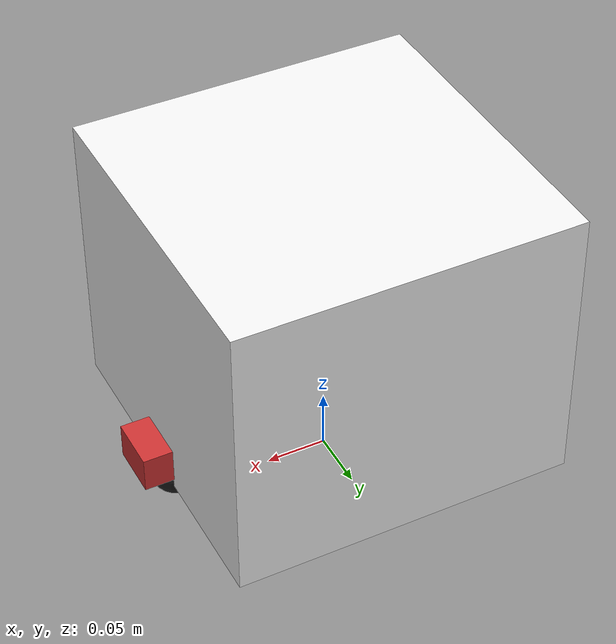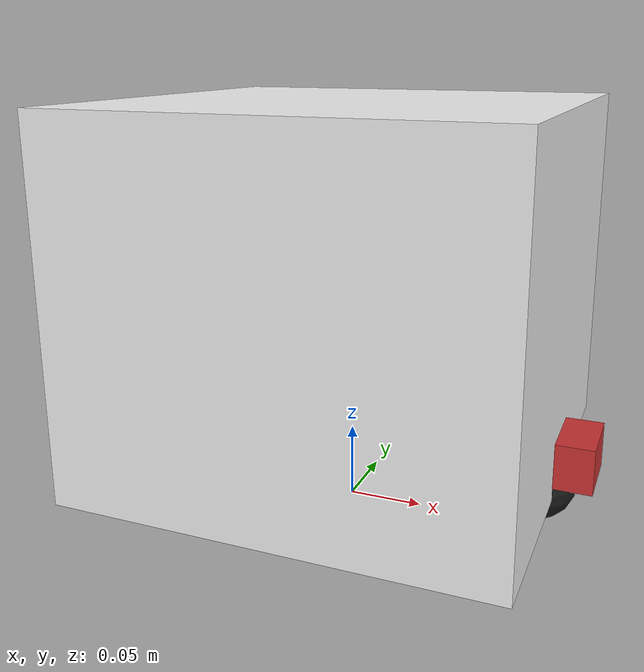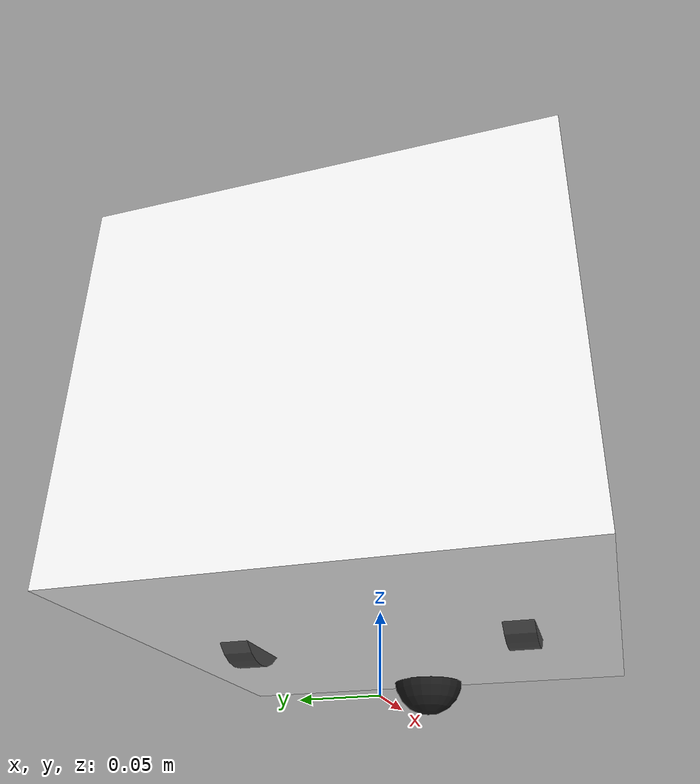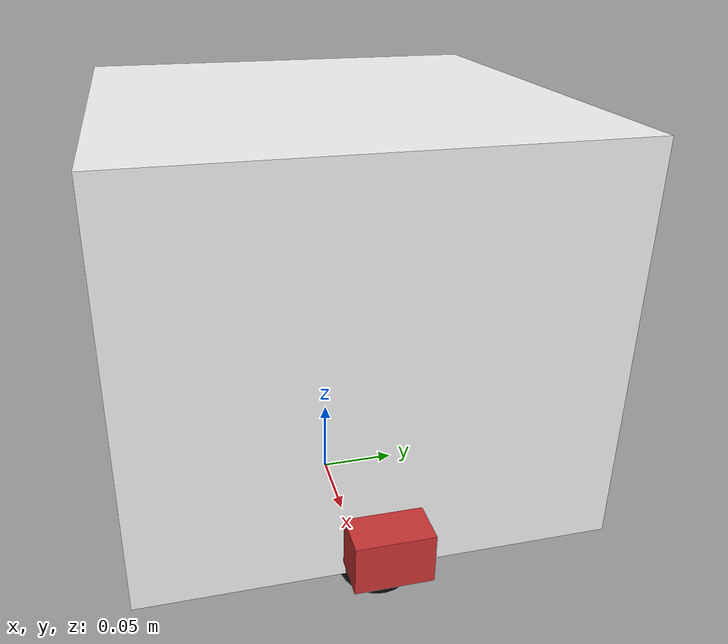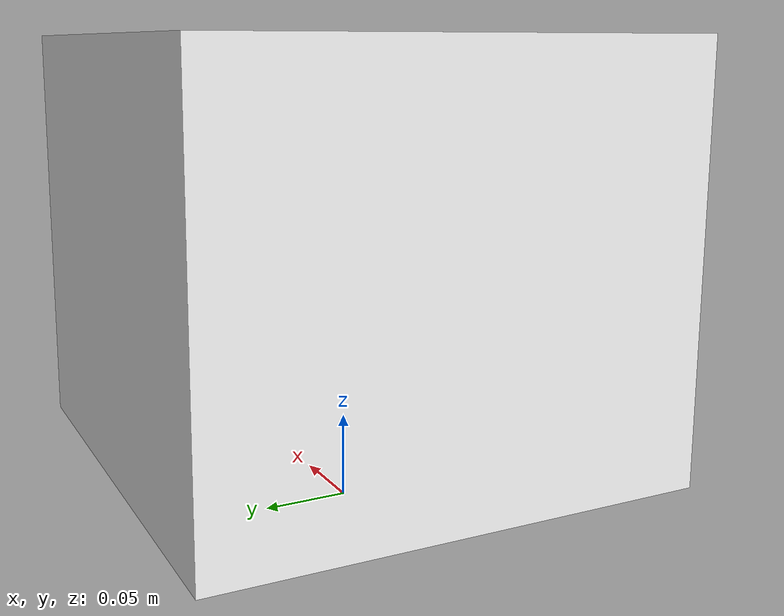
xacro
<?xml version="1.0"?>
<robot xmlns:xacro="http://www.ros.org/wiki/xacro" name="hospital_robot">

  <xacro:property name="wheel_radius" value="0.0325"/>
  <xacro:property name="wheel_width" value="0.018"/>
  <xacro:property name="wheel_separation" value="0.171"/>
  <xacro:property name="wheel_mass" value="0.5"/>

  <!-- 차체 (사각형으로 변경) -->
  <xacro:property name="base_length" value="0.285"/>   <!-- X축 (앞뒤) -->
  <xacro:property name="base_width" value="0.280"/>    <!-- Y축 (좌우) -->
  <xacro:property name="base_height" value="0.242"/>   <!-- Z축 (높이) -->
  <xacro:property name="base_mass" value="8.0"/>

  <!-- 센서 위치 -->
  <xacro:property name="lidar_x_offset" value="0.10"/>
  <xacro:property name="lidar_z_ground" value="0.101"/>   <!-- 10.1cm -->
  <xacro:property name="camera_x_offset" value="0.152"/>
  <xacro:property name="camera_z_ground" value="0.056"/>

  <!-- 기타 -->
  <xacro:property name="caster_radius" value="0.025"/>
  <xacro:property name="caster_mass" value="0.2"/>
  <xacro:property name="lidar_size" value="0.06"/>
  <xacro:property name="lidar_height" value="0.04"/>
  <xacro:property name="camera_size" value="0.03"/>

  <material name="white"><color rgba="0.95 0.95 0.95 1"/></material>
  <material name="dark_grey"><color rgba="0.3 0.3 0.3 1"/></material>
  <material name="black"><color rgba="0.1 0.1 0.1 1"/></material>
  <material name="red"><color rgba="0.8 0.2 0.2 1"/></material>

  <xacro:macro name="cylinder_inertia" params="m r h">
    <inertial>
      <mass value="${m}"/>
      <inertia ixx="${(1/12)*m*(3*r*r+h*h)}" ixy="0" ixz="0" iyy="${(1/12)*m*(3*r*r+h*h)}" iyz="0" izz="${(1/2)*m*r*r}"/>
    </inertial>
  </xacro:macro>

  <xacro:macro name="sphere_inertia" params="m r">
    <inertial>
      <mass value="${m}"/>
      <inertia ixx="${(2/5)*m*r*r}" ixy="0" ixz="0" iyy="${(2/5)*m*r*r}" iyz="0" izz="${(2/5)*m*r*r}"/>
    </inertial>
  </xacro:macro>

  <xacro:macro name="box_inertia" params="m x y z">
    <inertial>
      <mass value="${m}"/>
      <inertia ixx="${(1/12)*m*(y*y+z*z)}" ixy="0" ixz="0" iyy="${(1/12)*m*(x*x+z*z)}" iyz="0" izz="${(1/12)*m*(x*x+y*y)}"/>
    </inertial>
  </xacro:macro>

  <link name="base_footprint"/>

  <joint name="base_joint" type="fixed">
    <parent link="base_footprint"/>
    <child link="base_link"/>
    <origin xyz="0 0 ${wheel_radius + base_height/2}" rpy="0 0 0"/>
  </joint>

  <!-- 차체: 원형 → 사각형 (Box) -->
  <link name="base_link">
    <xacro:box_inertia m="${base_mass}" x="${base_length}" y="${base_width}" z="${base_height}"/>
    <visual>
      <geometry><box size="${base_length} ${base_width} ${base_height}"/></geometry>
      <material name="white"/>
    </visual>
    <collision>
      <geometry><box size="${base_length} ${base_width} ${base_height}"/></geometry>
    </collision>
  </link>

  <xacro:macro name="drive_wheel" params="prefix y_offset">
    <link name="${prefix}_wheel">
      <xacro:cylinder_inertia m="${wheel_mass}" r="${wheel_radius}" h="${wheel_width}"/>
      <visual>
        <geometry><cylinder radius="${wheel_radius}" length="${wheel_width}"/></geometry>
        <material name="dark_grey"/>
      </visual>
      <collision>
        <geometry><cylinder radius="${wheel_radius}" length="${wheel_width}"/></geometry>
      </collision>
    </link>
    <joint name="${prefix}_wheel_joint" type="continuous">
      <parent link="base_link"/>
      <child link="${prefix}_wheel"/>
      <origin xyz="0 ${y_offset} ${-base_height/2 + wheel_radius - 0.01}" rpy="${-pi/2} 0 0"/>
      <axis xyz="0 0 1"/>
      <dynamics damping="0.01" friction="0.1"/>
    </joint>
  </xacro:macro>

  <xacro:drive_wheel prefix="left" y_offset="${wheel_separation/2}"/>
  <xacro:drive_wheel prefix="right" y_offset="${-wheel_separation/2}"/>

  <link name="front_caster">
    <xacro:sphere_inertia m="${caster_mass}" r="${caster_radius}"/>
    <visual>
      <geometry><sphere radius="${caster_radius}"/></geometry>
      <material name="black"/>
    </visual>
    <collision>
      <geometry><sphere radius="${caster_radius}"/></geometry>
    </collision>
  </link>
  <joint name="front_caster_joint" type="fixed">
    <parent link="base_link"/>
    <child link="front_caster"/>
    <origin xyz="0.13 0 ${-base_height/2 - caster_radius + wheel_radius - 0.005}" rpy="0 0 0"/>
  </joint>

  <link name="lidar_link">
    <xacro:cylinder_inertia m="0.2" r="${lidar_size/2}" h="${lidar_height}"/>
    <visual>
      <geometry><cylinder radius="${lidar_size/2}" length="${lidar_height}"/></geometry>
      <material name="black"/>
    </visual>
    <collision>
      <geometry><cylinder radius="${lidar_size/2}" length="${lidar_height}"/></geometry>
    </collision>
  </link>
  <joint name="lidar_joint" type="fixed">
    <parent link="base_link"/>
    <child link="lidar_link"/>
    <origin xyz="${lidar_x_offset} 0 ${lidar_z_ground - (wheel_radius + base_height/2)}" rpy="0 0 3.14159"/>
  </joint>

  <link name="camera_link">
    <xacro:box_inertia m="0.1" x="${camera_size}" y="${camera_size*1.5}" z="${camera_size}"/>
    <visual>
      <geometry><box size="${camera_size} ${camera_size*1.5} ${camera_size}"/></geometry>
      <material name="red"/>
    </visual>
    <collision>
      <geometry><box size="${camera_size} ${camera_size*1.5} ${camera_size}"/></geometry>
    </collision>
  </link>
  <joint name="camera_joint" type="fixed">
    <parent link="base_link"/>
    <child link="camera_link"/>
    <origin xyz="${camera_x_offset} 0 ${camera_z_ground - (wheel_radius + base_height/2)}" rpy="0 0 0"/>
  </joint>

  <link name="imu_link">
    <inertial>
      <mass value="0.01"/>
      <inertia ixx="0.0001" ixy="0" ixz="0" iyy="0.0001" iyz="0" izz="0.0001"/>
    </inertial>
  </link>

  <joint name="imu_joint" type="fixed">
    <parent link="base_footprint"/>
    <child link="imu_link"/>
    <origin xyz="0 0 0" rpy="0 0 0"/>
  </joint>

</robot>
